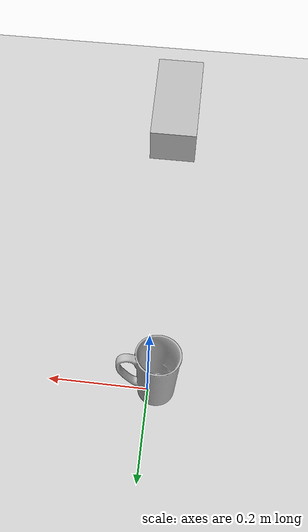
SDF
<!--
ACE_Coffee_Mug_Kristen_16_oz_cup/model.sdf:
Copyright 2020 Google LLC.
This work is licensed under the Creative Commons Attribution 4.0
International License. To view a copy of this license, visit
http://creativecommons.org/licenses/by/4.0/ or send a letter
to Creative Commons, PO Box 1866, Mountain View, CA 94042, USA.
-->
<?xml version='1.0' ?>
<sdf version='1.7'>
  <world name='default'>

    <physics type="ignored">
      <max_step_size>0.01</max_step_size>
      <real_time_factor>1.0</real_time_factor>
    </physics>

    <plugin
      filename="gz-sim-physics-system"
      name="gz::sim::systems::Physics">
    </plugin>
    <plugin
      filename="gz-sim-user-commands-system"
      name="gz::sim::systems::UserCommands">
    </plugin>
    <plugin
      filename="gz-sim-scene-broadcaster-system"
      name="gz::sim::systems::SceneBroadcaster">
    </plugin>
    <plugin
      filename="gz-sim-sensors-system"
      name="gz::sim::systems::Sensors">
      <render_engine>ogre2</render_engine>
    </plugin>
    <plugin
      filename="gz-sim-imu-system"
      name="gz::sim::systems::Imu">
    </plugin>
    <plugin
      filename="gz-sim-contact-system"
      name="gz::sim::systems::Contact">
    </plugin>

    <include>
      <uri>model://ground_plane</uri>
    </include>

    <include>
      <uri>model://sun</uri>
    </include>

    <include>
      <uri>model://ACE_Coffee_Mug_Kristen_16_oz_cup</uri>
    </include>

    <!-- static depth (or RGB-D) camera -->
    <model name="depth_camera">
      <static>true</static>
      <pose>0 -0.6 0.2 0 0.2 1.57</pose>
      <link name="camera_link">
        <visual name="camera_visual">
          <geometry>
            <box>
              <size>0.2 0.1 0.1</size> <!-- small box to represent the camera -->
            </box>
          </geometry>
        </visual>

        <sensor name="depth_sensor" type="rgbd_camera">
          <pose>0 0 0 0 0 0</pose>
          <always_on>true</always_on>
          <update_rate>1</update_rate>
          <camera>
            <horizontal_fov>1.047</horizontal_fov>
            <image>
              <width>100</width>
              <height>100</height>
            </image>
            <clip>
              <near>0.1</near>
              <far>10.0</far>
            </clip>
          </camera>
          <depth_camera>
            <min_depth>0.1</min_depth>
            <max_depth>10.0</max_depth>
          </depth_camera>
          <visualize>true</visualize>
          <!-- ROS 2 bridge topic configuration -->
          <topic>/camera</topic>
          <gz_frame_id>depth_camera_link</gz_frame_id>
        </sensor>
      </link>
    </model>

  </world>
</sdf>

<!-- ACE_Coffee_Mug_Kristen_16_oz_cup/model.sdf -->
<sdf version="1.6">
  <model name="ACE_Coffee_Mug_Kristen_16_oz_cup">
    <link name="link_0">
      <visual name="visual">
        <geometry>
          <mesh>
            <uri>meshes/model.obj</uri>
          </mesh>
        </geometry>
      </visual>
      <collision name="collision_0">
        <geometry>
          <mesh>
            <uri>meshes/model.obj</uri>
          </mesh>
        </geometry>
      </collision>
    </link>
  </model>
</sdf>
